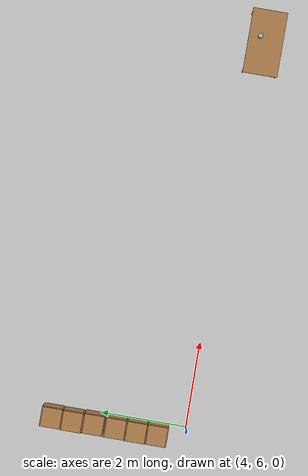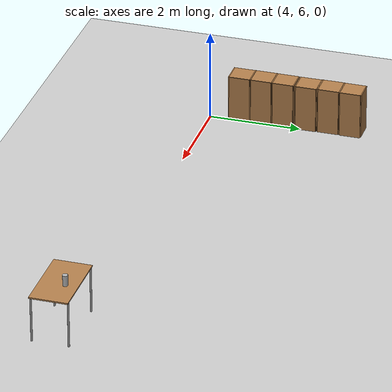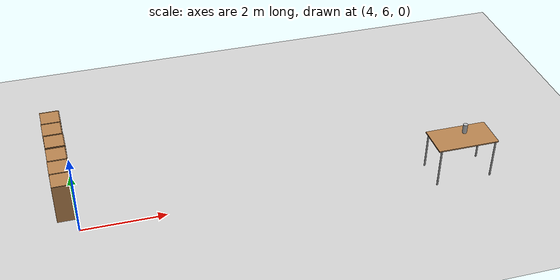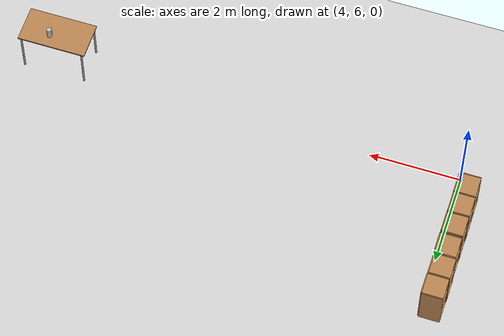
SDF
<sdf version="1.6">
 <world name="default">
  <model name="ground_plane">
   <static>1</static>
   <link name="link">
    <collision name="collision">
     <geometry><plane><normal>0 0 1</normal><size>100 100</size></plane></geometry>
     <surface>
      <contact><collide_bitmask>65535</collide_bitmask></contact>
      <friction><ode><mu>100</mu><mu2>50</mu2></ode></friction>
     </surface>
    </collision>
    <visual name="visual">
     <cast_shadows>0</cast_shadows>
     <geometry><plane><normal>0 0 1</normal><size>100 100</size></plane></geometry>
     <material>
      <script><uri>file://media/materials/scripts/gazebo.material</uri><name>Gazebo/Grey</name></script>
     </material>
    </visual>
   </link>
  </model>
  <model name="table">
   <static>1</static>
   <link name="link">
    <collision name="surface">
     <pose>0 0 1 0 -0 0</pose>
     <geometry><box><size>1.5 0.8 0.03</size></box></geometry>
     <surface><friction><ode><mu>0.6</mu><mu2>0.6</mu2></ode></friction></surface>
    </collision>
    <visual name="visual1">
     <pose>0 0 1 0 -0 0</pose>
     <geometry><box><size>1.5 0.8 0.03</size></box></geometry>
     <material>
      <script><uri>file://media/materials/scripts/gazebo.material</uri><name>Gazebo/Wood</name></script>
     </material>
    </visual>
    <collision name="front_left_leg">
     <pose>0.68 0.38 0.5 0 -0 0</pose>
     <geometry><cylinder><radius>0.02</radius><length>1</length></cylinder></geometry>
    </collision>
    <visual name="front_left_leg">
     <pose>0.68 0.38 0.5 0 -0 0</pose>
     <geometry><cylinder><radius>0.02</radius><length>1</length></cylinder></geometry>
     <material>
      <script><uri>file://media/materials/scripts/gazebo.material</uri><name>Gazebo/Grey</name></script>
     </material>
    </visual>
    <collision name="front_right_leg">
     <pose>0.68 -0.38 0.5 0 -0 0</pose>
     <geometry><cylinder><radius>0.02</radius><length>1</length></cylinder></geometry>
    </collision>
    <visual name="front_right_leg">
     <pose>0.68 -0.38 0.5 0 -0 0</pose>
     <geometry><cylinder><radius>0.02</radius><length>1</length></cylinder></geometry>
     <material>
      <script><uri>file://media/materials/scripts/gazebo.material</uri><name>Gazebo/Grey</name></script>
     </material>
    </visual>
    <collision name="back_right_leg">
     <pose>-0.68 -0.38 0.5 0 -0 0</pose>
     <geometry><cylinder><radius>0.02</radius><length>1</length></cylinder></geometry>
    </collision>
    <visual name="back_right_leg">
     <pose>-0.68 -0.38 0.5 0 -0 0</pose>
     <geometry><cylinder><radius>0.02</radius><length>1</length></cylinder></geometry>
     <material>
      <script><uri>file://media/materials/scripts/gazebo.material</uri><name>Gazebo/Grey</name></script>
     </material>
    </visual>
    <collision name="back_left_leg">
     <pose>-0.68 0.38 0.5 0 -0 0</pose>
     <geometry><cylinder><radius>0.02</radius><length>1</length></cylinder></geometry>
    </collision>
    <visual name="back_left_leg">
     <pose>-0.68 0.38 0.5 0 -0 0</pose>
     <geometry><cylinder><radius>0.02</radius><length>1</length></cylinder></geometry>
     <material>
      <script><uri>file://media/materials/scripts/gazebo.material</uri><name>Gazebo/Grey</name></script>
     </material>
    </visual>
   </link>
   <pose>13.0602 5.71724 0 0 -0 0</pose>
  </model>
  <model name="beer">
   <link name="link">
    <pose>0 0 0.115 0 -0 0</pose>
    <inertial>
     <mass>0.39</mass>
     <inertia><ixx>0.00058</ixx><ixy>0</ixy><ixz>0</ixz><iyy>0.00058</iyy><iyz>0</iyz><izz>0.00019</izz></inertia>
    </inertial>
    <collision name="collision">
     <geometry><cylinder><radius>0.055</radius><length>0.23</length></cylinder></geometry>
    </collision>
    <visual name="visual">
     <geometry><cylinder><radius>0.055</radius><length>0.23</length></cylinder></geometry>
     <material>
      <script>
       <uri>model://beer/materials/scripts</uri>
       <uri>model://beer/materials/textures</uri>
       <name>Beer/Diffuse</name>
      </script>
     </material>
    </visual>
   </link>
   <pose>13.1795 5.85444 1.015 1e-06 -2.7e-05 0.001646</pose>
  </model>
  <model name="cabinet">
   <static>1</static>
   <link name="cabinet_bottom_plate">
    <inertial>
     <pose>0 0 -1 0 -0 0</pose>
     <inertia><ixx>2.05</ixx><ixy>0</ixy><ixz>0</ixz><iyy>2.05</iyy><iyz>0</iyz><izz>2.05</izz></inertia>
     <mass>25</mass>
    </inertial>
    <collision name="cabinet_bottom_plate_geom">
     <pose>0 0 0.01 0 -0 0</pose>
     <geometry><box><size>0.45 0.45 0.02</size></box></geometry>
    </collision>
    <visual name="cabinet_bottom_plate_geom_visual">
     <pose>0 0 0.01 0 -0 0</pose>
     <geometry><box><size>0.45 0.45 0.02</size></box></geometry>
     <material>
      <script><uri>file://media/materials/scripts/gazebo.material</uri><name>Gazebo/Wood</name></script>
     </material>
    </visual>
    <collision name="cabinet_bottom_plate_geom_cabinet_back_plate">
     <pose>0.235 0 0.51 0 -0 0</pose>
     <geometry><box><size>0.02 0.45 1.02</size></box></geometry>
    </collision>
    <visual name="cabinet_bottom_plate_geom_cabinet_back_plate_visual">
     <pose>0.235 0 0.51 0 -0 0</pose>
     <geometry><box><size>0.02 0.45 1.02</size></box></geometry>
     <material>
      <script><uri>file://media/materials/scripts/gazebo.material</uri><name>Gazebo/Wood</name></script>
     </material>
    </visual>
    <collision name="cabinet_bottom_plate_geom_cabinet_left_plate">
     <pose>0 0.235 0.51 0 -0 0</pose>
     <geometry><box><size>0.45 0.02 1.02</size></box></geometry>
    </collision>
    <visual name="cabinet_bottom_plate_geom_cabinet_left_plate_visual">
     <pose>0 0.235 0.51 0 -0 0</pose>
     <geometry><box><size>0.45 0.02 1.02</size></box></geometry>
     <material>
      <script><uri>file://media/materials/scripts/gazebo.material</uri><name>Gazebo/Wood</name></script>
     </material>
    </visual>
    <collision name="cabinet_bottom_plate_geom_cabinet_middle_plate">
     <pose>0 0 0.51 0 -0 0</pose>
     <geometry><box><size>0.45 0.45 0.02</size></box></geometry>
    </collision>
    <visual name="cabinet_bottom_plate_geom_cabinet_middle_plate_visual">
     <pose>0 0 0.51 0 -0 0</pose>
     <geometry><box><size>0.45 0.45 0.02</size></box></geometry>
     <material>
      <script><uri>file://media/materials/scripts/gazebo.material</uri><name>Gazebo/Wood</name></script>
     </material>
    </visual>
    <collision name="cabinet_bottom_plate_geom_cabinet_right_plate">
     <pose>0 -0.235 0.51 0 -0 0</pose>
     <geometry><box><size>0.45 0.02 1.02</size></box></geometry>
    </collision>
    <visual name="cabinet_bottom_plate_geom_cabinet_right_plate_visual">
     <pose>0 -0.235 0.51 0 -0 0</pose>
     <geometry><box><size>0.45 0.02 1.02</size></box></geometry>
     <material>
      <script><uri>file://media/materials/scripts/gazebo.material</uri><name>Gazebo/Wood</name></script>
     </material>
    </visual>
    <collision name="cabinet_bottom_plate_geom_cabinet_top_plate">
     <pose>0 0 1.01 0 -0 0</pose>
     <geometry><box><size>0.45 0.45 0.02</size></box></geometry>
    </collision>
    <visual name="cabinet_bottom_plate_geom_cabinet_top_plate_visual">
     <pose>0 0 1.01 0 -0 0</pose>
     <geometry><box><size>0.45 0.45 0.02</size></box></geometry>
     <material>
      <script><uri>file://media/materials/scripts/gazebo.material</uri><name>Gazebo/Wood</name></script>
     </material>
    </visual>
   </link>
   <pose>3.76015 6.64203 0 0 -0 0</pose>
  </model>
  <model name="cabinet_clone">
   <static>1</static>
   <link name="cabinet_bottom_plate">
    <inertial>
     <pose>0 0 -1 0 -0 0</pose>
     <inertia><ixx>2.05</ixx><ixy>0</ixy><ixz>0</ixz><iyy>2.05</iyy><iyz>0</iyz><izz>2.05</izz></inertia>
     <mass>25</mass>
    </inertial>
    <collision name="cabinet_bottom_plate_geom">
     <pose>0 0 0.01 0 -0 0</pose>
     <geometry><box><size>0.45 0.45 0.02</size></box></geometry>
    </collision>
    <visual name="cabinet_bottom_plate_geom_visual">
     <pose>0 0 0.01 0 -0 0</pose>
     <geometry><box><size>0.45 0.45 0.02</size></box></geometry>
     <material>
      <script><uri>file://media/materials/scripts/gazebo.material</uri><name>Gazebo/Wood</name></script>
     </material>
    </visual>
    <collision name="cabinet_bottom_plate_geom_cabinet_back_plate">
     <pose>0.235 0 0.51 0 -0 0</pose>
     <geometry><box><size>0.02 0.45 1.02</size></box></geometry>
    </collision>
    <visual name="cabinet_bottom_plate_geom_cabinet_back_plate_visual">
     <pose>0.235 0 0.51 0 -0 0</pose>
     <geometry><box><size>0.02 0.45 1.02</size></box></geometry>
     <material>
      <script><uri>file://media/materials/scripts/gazebo.material</uri><name>Gazebo/Wood</name></script>
     </material>
    </visual>
    <collision name="cabinet_bottom_plate_geom_cabinet_left_plate">
     <pose>0 0.235 0.51 0 -0 0</pose>
     <geometry><box><size>0.45 0.02 1.02</size></box></geometry>
    </collision>
    <visual name="cabinet_bottom_plate_geom_cabinet_left_plate_visual">
     <pose>0 0.235 0.51 0 -0 0</pose>
     <geometry><box><size>0.45 0.02 1.02</size></box></geometry>
     <material>
      <script><uri>file://media/materials/scripts/gazebo.material</uri><name>Gazebo/Wood</name></script>
     </material>
    </visual>
    <collision name="cabinet_bottom_plate_geom_cabinet_middle_plate">
     <pose>0 0 0.51 0 -0 0</pose>
     <geometry><box><size>0.45 0.45 0.02</size></box></geometry>
    </collision>
    <visual name="cabinet_bottom_plate_geom_cabinet_middle_plate_visual">
     <pose>0 0 0.51 0 -0 0</pose>
     <geometry><box><size>0.45 0.45 0.02</size></box></geometry>
     <material>
      <script><uri>file://media/materials/scripts/gazebo.material</uri><name>Gazebo/Wood</name></script>
     </material>
    </visual>
    <collision name="cabinet_bottom_plate_geom_cabinet_right_plate">
     <pose>0 -0.235 0.51 0 -0 0</pose>
     <geometry><box><size>0.45 0.02 1.02</size></box></geometry>
    </collision>
    <visual name="cabinet_bottom_plate_geom_cabinet_right_plate_visual">
     <pose>0 -0.235 0.51 0 -0 0</pose>
     <geometry><box><size>0.45 0.02 1.02</size></box></geometry>
     <material>
      <script><uri>file://media/materials/scripts/gazebo.material</uri><name>Gazebo/Wood</name></script>
     </material>
    </visual>
    <collision name="cabinet_bottom_plate_geom_cabinet_top_plate">
     <pose>0 0 1.01 0 -0 0</pose>
     <geometry><box><size>0.45 0.45 0.02</size></box></geometry>
    </collision>
    <visual name="cabinet_bottom_plate_geom_cabinet_top_plate_visual">
     <pose>0 0 1.01 0 -0 0</pose>
     <geometry><box><size>0.45 0.45 0.02</size></box></geometry>
     <material>
      <script><uri>file://media/materials/scripts/gazebo.material</uri><name>Gazebo/Wood</name></script>
     </material>
    </visual>
   </link>
   <pose>3.75696 7.12211 0 0 -0 0</pose>
  </model>
  <model name="cabinet_clone_0">
   <static>1</static>
   <link name="cabinet_bottom_plate">
    <inertial>
     <pose>0 0 -1 0 -0 0</pose>
     <inertia><ixx>2.05</ixx><ixy>0</ixy><ixz>0</ixz><iyy>2.05</iyy><iyz>0</iyz><izz>2.05</izz></inertia>
     <mass>25</mass>
    </inertial>
    <collision name="cabinet_bottom_plate_geom">
     <pose>0 0 0.01 0 -0 0</pose>
     <geometry><box><size>0.45 0.45 0.02</size></box></geometry>
    </collision>
    <visual name="cabinet_bottom_plate_geom_visual">
     <pose>0 0 0.01 0 -0 0</pose>
     <geometry><box><size>0.45 0.45 0.02</size></box></geometry>
     <material>
      <script><uri>file://media/materials/scripts/gazebo.material</uri><name>Gazebo/Wood</name></script>
     </material>
    </visual>
    <collision name="cabinet_bottom_plate_geom_cabinet_back_plate">
     <pose>0.235 0 0.51 0 -0 0</pose>
     <geometry><box><size>0.02 0.45 1.02</size></box></geometry>
    </collision>
    <visual name="cabinet_bottom_plate_geom_cabinet_back_plate_visual">
     <pose>0.235 0 0.51 0 -0 0</pose>
     <geometry><box><size>0.02 0.45 1.02</size></box></geometry>
     <material>
      <script><uri>file://media/materials/scripts/gazebo.material</uri><name>Gazebo/Wood</name></script>
     </material>
    </visual>
    <collision name="cabinet_bottom_plate_geom_cabinet_left_plate">
     <pose>0 0.235 0.51 0 -0 0</pose>
     <geometry><box><size>0.45 0.02 1.02</size></box></geometry>
    </collision>
    <visual name="cabinet_bottom_plate_geom_cabinet_left_plate_visual">
     <pose>0 0.235 0.51 0 -0 0</pose>
     <geometry><box><size>0.45 0.02 1.02</size></box></geometry>
     <material>
      <script><uri>file://media/materials/scripts/gazebo.material</uri><name>Gazebo/Wood</name></script>
     </material>
    </visual>
    <collision name="cabinet_bottom_plate_geom_cabinet_middle_plate">
     <pose>0 0 0.51 0 -0 0</pose>
     <geometry><box><size>0.45 0.45 0.02</size></box></geometry>
    </collision>
    <visual name="cabinet_bottom_plate_geom_cabinet_middle_plate_visual">
     <pose>0 0 0.51 0 -0 0</pose>
     <geometry><box><size>0.45 0.45 0.02</size></box></geometry>
     <material>
      <script><uri>file://media/materials/scripts/gazebo.material</uri><name>Gazebo/Wood</name></script>
     </material>
    </visual>
    <collision name="cabinet_bottom_plate_geom_cabinet_right_plate">
     <pose>0 -0.235 0.51 0 -0 0</pose>
     <geometry><box><size>0.45 0.02 1.02</size></box></geometry>
    </collision>
    <visual name="cabinet_bottom_plate_geom_cabinet_right_plate_visual">
     <pose>0 -0.235 0.51 0 -0 0</pose>
     <geometry><box><size>0.45 0.02 1.02</size></box></geometry>
     <material>
      <script><uri>file://media/materials/scripts/gazebo.material</uri><name>Gazebo/Wood</name></script>
     </material>
    </visual>
    <collision name="cabinet_bottom_plate_geom_cabinet_top_plate">
     <pose>0 0 1.01 0 -0 0</pose>
     <geometry><box><size>0.45 0.45 0.02</size></box></geometry>
    </collision>
    <visual name="cabinet_bottom_plate_geom_cabinet_top_plate_visual">
     <pose>0 0 1.01 0 -0 0</pose>
     <geometry><box><size>0.45 0.45 0.02</size></box></geometry>
     <material>
      <script><uri>file://media/materials/scripts/gazebo.material</uri><name>Gazebo/Wood</name></script>
     </material>
    </visual>
   </link>
   <pose>3.76265 7.60728 0 0 -0 0</pose>
  </model>
  <model name="cabinet_clone_1">
   <static>1</static>
   <link name="cabinet_bottom_plate">
    <inertial>
     <pose>0 0 -1 0 -0 0</pose>
     <inertia><ixx>2.05</ixx><ixy>0</ixy><ixz>0</ixz><iyy>2.05</iyy><iyz>0</iyz><izz>2.05</izz></inertia>
     <mass>25</mass>
    </inertial>
    <collision name="cabinet_bottom_plate_geom">
     <pose>0 0 0.01 0 -0 0</pose>
     <geometry><box><size>0.45 0.45 0.02</size></box></geometry>
    </collision>
    <visual name="cabinet_bottom_plate_geom_visual">
     <pose>0 0 0.01 0 -0 0</pose>
     <geometry><box><size>0.45 0.45 0.02</size></box></geometry>
     <material>
      <script><uri>file://media/materials/scripts/gazebo.material</uri><name>Gazebo/Wood</name></script>
     </material>
    </visual>
    <collision name="cabinet_bottom_plate_geom_cabinet_back_plate">
     <pose>0.235 0 0.51 0 -0 0</pose>
     <geometry><box><size>0.02 0.45 1.02</size></box></geometry>
    </collision>
    <visual name="cabinet_bottom_plate_geom_cabinet_back_plate_visual">
     <pose>0.235 0 0.51 0 -0 0</pose>
     <geometry><box><size>0.02 0.45 1.02</size></box></geometry>
     <material>
      <script><uri>file://media/materials/scripts/gazebo.material</uri><name>Gazebo/Wood</name></script>
     </material>
    </visual>
    <collision name="cabinet_bottom_plate_geom_cabinet_left_plate">
     <pose>0 0.235 0.51 0 -0 0</pose>
     <geometry><box><size>0.45 0.02 1.02</size></box></geometry>
    </collision>
    <visual name="cabinet_bottom_plate_geom_cabinet_left_plate_visual">
     <pose>0 0.235 0.51 0 -0 0</pose>
     <geometry><box><size>0.45 0.02 1.02</size></box></geometry>
     <material>
      <script><uri>file://media/materials/scripts/gazebo.material</uri><name>Gazebo/Wood</name></script>
     </material>
    </visual>
    <collision name="cabinet_bottom_plate_geom_cabinet_middle_plate">
     <pose>0 0 0.51 0 -0 0</pose>
     <geometry><box><size>0.45 0.45 0.02</size></box></geometry>
    </collision>
    <visual name="cabinet_bottom_plate_geom_cabinet_middle_plate_visual">
     <pose>0 0 0.51 0 -0 0</pose>
     <geometry><box><size>0.45 0.45 0.02</size></box></geometry>
     <material>
      <script><uri>file://media/materials/scripts/gazebo.material</uri><name>Gazebo/Wood</name></script>
     </material>
    </visual>
    <collision name="cabinet_bottom_plate_geom_cabinet_right_plate">
     <pose>0 -0.235 0.51 0 -0 0</pose>
     <geometry><box><size>0.45 0.02 1.02</size></box></geometry>
    </collision>
    <visual name="cabinet_bottom_plate_geom_cabinet_right_plate_visual">
     <pose>0 -0.235 0.51 0 -0 0</pose>
     <geometry><box><size>0.45 0.02 1.02</size></box></geometry>
     <material>
      <script><uri>file://media/materials/scripts/gazebo.material</uri><name>Gazebo/Wood</name></script>
     </material>
    </visual>
    <collision name="cabinet_bottom_plate_geom_cabinet_top_plate">
     <pose>0 0 1.01 0 -0 0</pose>
     <geometry><box><size>0.45 0.45 0.02</size></box></geometry>
    </collision>
    <visual name="cabinet_bottom_plate_geom_cabinet_top_plate_visual">
     <pose>0 0 1.01 0 -0 0</pose>
     <geometry><box><size>0.45 0.45 0.02</size></box></geometry>
     <material>
      <script><uri>file://media/materials/scripts/gazebo.material</uri><name>Gazebo/Wood</name></script>
     </material>
    </visual>
   </link>
   <pose>3.76764 8.11899 0 0 -0 0</pose>
  </model>
  <model name="cabinet_clone_2">
   <static>1</static>
   <link name="cabinet_bottom_plate">
    <inertial>
     <pose>0 0 -1 0 -0 0</pose>
     <inertia><ixx>2.05</ixx><ixy>0</ixy><ixz>0</ixz><iyy>2.05</iyy><iyz>0</iyz><izz>2.05</izz></inertia>
     <mass>25</mass>
    </inertial>
    <collision name="cabinet_bottom_plate_geom">
     <pose>0 0 0.01 0 -0 0</pose>
     <geometry><box><size>0.45 0.45 0.02</size></box></geometry>
    </collision>
    <visual name="cabinet_bottom_plate_geom_visual">
     <pose>0 0 0.01 0 -0 0</pose>
     <geometry><box><size>0.45 0.45 0.02</size></box></geometry>
     <material>
      <script><uri>file://media/materials/scripts/gazebo.material</uri><name>Gazebo/Wood</name></script>
     </material>
    </visual>
    <collision name="cabinet_bottom_plate_geom_cabinet_back_plate">
     <pose>0.235 0 0.51 0 -0 0</pose>
     <geometry><box><size>0.02 0.45 1.02</size></box></geometry>
    </collision>
    <visual name="cabinet_bottom_plate_geom_cabinet_back_plate_visual">
     <pose>0.235 0 0.51 0 -0 0</pose>
     <geometry><box><size>0.02 0.45 1.02</size></box></geometry>
     <material>
      <script><uri>file://media/materials/scripts/gazebo.material</uri><name>Gazebo/Wood</name></script>
     </material>
    </visual>
    <collision name="cabinet_bottom_plate_geom_cabinet_left_plate">
     <pose>0 0.235 0.51 0 -0 0</pose>
     <geometry><box><size>0.45 0.02 1.02</size></box></geometry>
    </collision>
    <visual name="cabinet_bottom_plate_geom_cabinet_left_plate_visual">
     <pose>0 0.235 0.51 0 -0 0</pose>
     <geometry><box><size>0.45 0.02 1.02</size></box></geometry>
     <material>
      <script><uri>file://media/materials/scripts/gazebo.material</uri><name>Gazebo/Wood</name></script>
     </material>
    </visual>
    <collision name="cabinet_bottom_plate_geom_cabinet_middle_plate">
     <pose>0 0 0.51 0 -0 0</pose>
     <geometry><box><size>0.45 0.45 0.02</size></box></geometry>
    </collision>
    <visual name="cabinet_bottom_plate_geom_cabinet_middle_plate_visual">
     <pose>0 0 0.51 0 -0 0</pose>
     <geometry><box><size>0.45 0.45 0.02</size></box></geometry>
     <material>
      <script><uri>file://media/materials/scripts/gazebo.material</uri><name>Gazebo/Wood</name></script>
     </material>
    </visual>
    <collision name="cabinet_bottom_plate_geom_cabinet_right_plate">
     <pose>0 -0.235 0.51 0 -0 0</pose>
     <geometry><box><size>0.45 0.02 1.02</size></box></geometry>
    </collision>
    <visual name="cabinet_bottom_plate_geom_cabinet_right_plate_visual">
     <pose>0 -0.235 0.51 0 -0 0</pose>
     <geometry><box><size>0.45 0.02 1.02</size></box></geometry>
     <material>
      <script><uri>file://media/materials/scripts/gazebo.material</uri><name>Gazebo/Wood</name></script>
     </material>
    </visual>
    <collision name="cabinet_bottom_plate_geom_cabinet_top_plate">
     <pose>0 0 1.01 0 -0 0</pose>
     <geometry><box><size>0.45 0.45 0.02</size></box></geometry>
    </collision>
    <visual name="cabinet_bottom_plate_geom_cabinet_top_plate_visual">
     <pose>0 0 1.01 0 -0 0</pose>
     <geometry><box><size>0.45 0.45 0.02</size></box></geometry>
     <material>
      <script><uri>file://media/materials/scripts/gazebo.material</uri><name>Gazebo/Wood</name></script>
     </material>
    </visual>
   </link>
   <pose>3.75705 8.61178 0 0 -0 0</pose>
  </model>
  <model name="cabinet_clone_3">
   <static>1</static>
   <link name="cabinet_bottom_plate">
    <inertial>
     <pose>0 0 -1 0 -0 0</pose>
     <inertia><ixx>2.05</ixx><ixy>0</ixy><ixz>0</ixz><iyy>2.05</iyy><iyz>0</iyz><izz>2.05</izz></inertia>
     <mass>25</mass>
    </inertial>
    <collision name="cabinet_bottom_plate_geom">
     <pose>0 0 0.01 0 -0 0</pose>
     <geometry><box><size>0.45 0.45 0.02</size></box></geometry>
    </collision>
    <visual name="cabinet_bottom_plate_geom_visual">
     <pose>0 0 0.01 0 -0 0</pose>
     <geometry><box><size>0.45 0.45 0.02</size></box></geometry>
     <material>
      <script><uri>file://media/materials/scripts/gazebo.material</uri><name>Gazebo/Wood</name></script>
     </material>
    </visual>
    <collision name="cabinet_bottom_plate_geom_cabinet_back_plate">
     <pose>0.235 0 0.51 0 -0 0</pose>
     <geometry><box><size>0.02 0.45 1.02</size></box></geometry>
    </collision>
    <visual name="cabinet_bottom_plate_geom_cabinet_back_plate_visual">
     <pose>0.235 0 0.51 0 -0 0</pose>
     <geometry><box><size>0.02 0.45 1.02</size></box></geometry>
     <material>
      <script><uri>file://media/materials/scripts/gazebo.material</uri><name>Gazebo/Wood</name></script>
     </material>
    </visual>
    <collision name="cabinet_bottom_plate_geom_cabinet_left_plate">
     <pose>0 0.235 0.51 0 -0 0</pose>
     <geometry><box><size>0.45 0.02 1.02</size></box></geometry>
    </collision>
    <visual name="cabinet_bottom_plate_geom_cabinet_left_plate_visual">
     <pose>0 0.235 0.51 0 -0 0</pose>
     <geometry><box><size>0.45 0.02 1.02</size></box></geometry>
     <material>
      <script><uri>file://media/materials/scripts/gazebo.material</uri><name>Gazebo/Wood</name></script>
     </material>
    </visual>
    <collision name="cabinet_bottom_plate_geom_cabinet_middle_plate">
     <pose>0 0 0.51 0 -0 0</pose>
     <geometry><box><size>0.45 0.45 0.02</size></box></geometry>
    </collision>
    <visual name="cabinet_bottom_plate_geom_cabinet_middle_plate_visual">
     <pose>0 0 0.51 0 -0 0</pose>
     <geometry><box><size>0.45 0.45 0.02</size></box></geometry>
     <material>
      <script><uri>file://media/materials/scripts/gazebo.material</uri><name>Gazebo/Wood</name></script>
     </material>
    </visual>
    <collision name="cabinet_bottom_plate_geom_cabinet_right_plate">
     <pose>0 -0.235 0.51 0 -0 0</pose>
     <geometry><box><size>0.45 0.02 1.02</size></box></geometry>
    </collision>
    <visual name="cabinet_bottom_plate_geom_cabinet_right_plate_visual">
     <pose>0 -0.235 0.51 0 -0 0</pose>
     <geometry><box><size>0.45 0.02 1.02</size></box></geometry>
     <material>
      <script><uri>file://media/materials/scripts/gazebo.material</uri><name>Gazebo/Wood</name></script>
     </material>
    </visual>
    <collision name="cabinet_bottom_plate_geom_cabinet_top_plate">
     <pose>0 0 1.01 0 -0 0</pose>
     <geometry><box><size>0.45 0.45 0.02</size></box></geometry>
    </collision>
    <visual name="cabinet_bottom_plate_geom_cabinet_top_plate_visual">
     <pose>0 0 1.01 0 -0 0</pose>
     <geometry><box><size>0.45 0.45 0.02</size></box></geometry>
     <material>
      <script><uri>file://media/materials/scripts/gazebo.material</uri><name>Gazebo/Wood</name></script>
     </material>
    </visual>
   </link>
   <pose>3.76519 9.09514 0 0 -0 0</pose>
  </model>
 </world>
</sdf>
